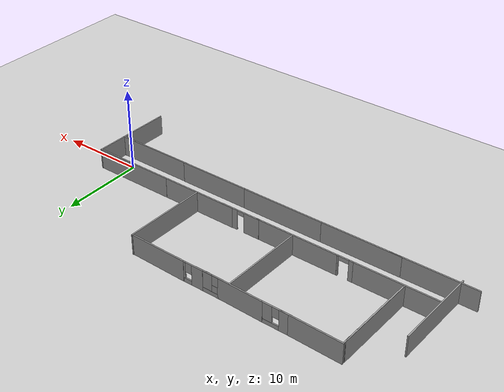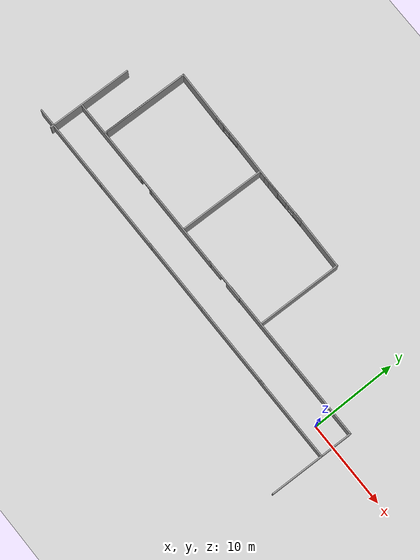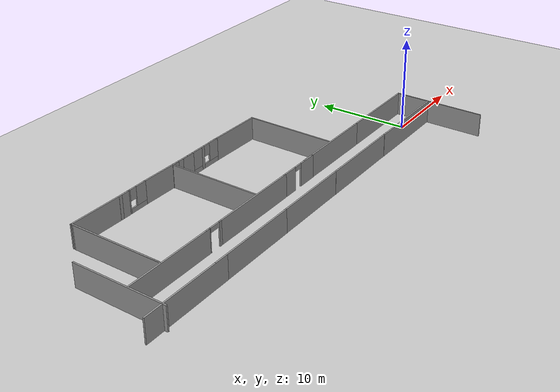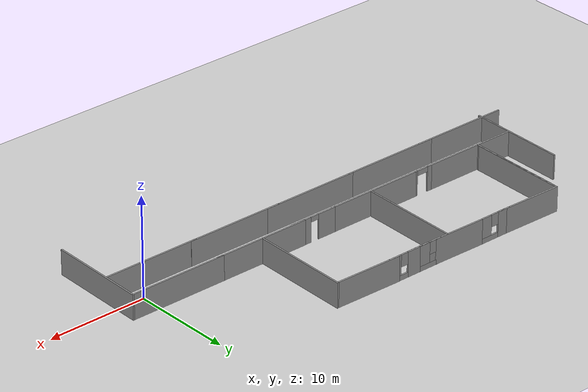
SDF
<sdf version="1.6">
 <world name="default">
  <model name="ground_plane">
   <static>1</static>
   <link name="link">
    <collision name="collision">
     <geometry><plane><normal>0 0 1</normal><size>100 100</size></plane></geometry>
     <surface>
      <contact><collide_bitmask>65535</collide_bitmask></contact>
      <friction><ode><mu>100</mu><mu2>50</mu2></ode></friction>
     </surface>
    </collision>
    <visual name="visual">
     <cast_shadows>0</cast_shadows>
     <geometry><plane><normal>0 0 1</normal><size>100 100</size></plane></geometry>
     <material>
      <script><uri>file://media/materials/scripts/gazebo.material</uri><name>Gazebo/Grey</name></script>
     </material>
    </visual>
   </link>
  </model>
  <model name="wall10">
   <pose>-2.12112 2.0663 0 0 -0 0</pose>
   <link name="Wall_1">
    <collision name="Wall_1_Collision">
     <geometry><box><size>10 0.15 2.5</size></box></geometry>
     <pose>0 0 1.25 0 -0 0</pose>
    </collision>
    <visual name="Wall_1_Visual">
     <pose>0 0 1.25 0 -0 0</pose>
     <geometry><box><size>10 0.15 2.5</size></box></geometry>
     <material>
      <script><uri>file://media/materials/scripts/gazebo.material</uri><name>Gazebo/Grey</name></script>
      <ambient>1 1 1 1</ambient>
     </material>
     <meta><layer>0</layer></meta>
    </visual>
   </link>
   <static>1</static>
  </model>
  <model name="wall10_0">
   <pose>-11.3867 2.05893 0 0 -0 0</pose>
   <link name="Wall_1">
    <collision name="Wall_1_Collision">
     <geometry><box><size>10 0.15 2.5</size></box></geometry>
     <pose>0 0 1.25 0 -0 0</pose>
    </collision>
    <visual name="Wall_1_Visual">
     <pose>0 0 1.25 0 -0 0</pose>
     <geometry><box><size>10 0.15 2.5</size></box></geometry>
     <material>
      <script><uri>file://media/materials/scripts/gazebo.material</uri><name>Gazebo/Grey</name></script>
      <ambient>1 1 1 1</ambient>
     </material>
     <meta><layer>0</layer></meta>
    </visual>
   </link>
   <static>1</static>
  </model>
  <model name="door5">
   <pose>-17.3676 2.02937 0 0 -0 0</pose>
   <link name="Wall_0">
    <visual name="Wall_0_Visual_0">
     <pose>-1.5275 0 1.25 0 -0 0</pose>
     <geometry><box><size>1.945 0.15 2.5</size></box></geometry>
     <material>
      <script><uri>file://media/materials/scripts/gazebo.material</uri><name>Gazebo/Grey</name></script>
      <ambient>1 1 1 1</ambient>
     </material>
     <meta><layer>0</layer></meta>
    </visual>
    <collision name="Wall_0_Collision_0">
     <geometry><box><size>1.945 0.15 2.5</size></box></geometry>
     <pose>-1.5275 0 1.25 0 -0 0</pose>
    </collision>
    <visual name="Wall_0_Visual_1">
     <pose>1.4225 0 1.25 0 -0 0</pose>
     <geometry><box><size>2.155 0.15 2.5</size></box></geometry>
     <material>
      <script><uri>file://media/materials/scripts/gazebo.material</uri><name>Gazebo/Grey</name></script>
      <ambient>1 1 1 1</ambient>
     </material>
     <meta><layer>0</layer></meta>
    </visual>
    <collision name="Wall_0_Collision_1">
     <geometry><box><size>2.155 0.15 2.5</size></box></geometry>
     <pose>1.4225 0 1.25 0 -0 0</pose>
    </collision>
    <visual name="Wall_0_Visual_2">
     <pose>-0.105 0 2.25 0 -0 0</pose>
     <geometry><box><size>0.9 0.15 0.5</size></box></geometry>
     <material>
      <script><uri>file://media/materials/scripts/gazebo.material</uri><name>Gazebo/Grey</name></script>
      <ambient>1 1 1 1</ambient>
     </material>
     <meta><layer>0</layer></meta>
    </visual>
    <collision name="Wall_0_Collision_2">
     <geometry><box><size>0.9 0.15 0.5</size></box></geometry>
     <pose>-0.105 0 2.25 0 -0 0</pose>
    </collision>
   </link>
   <static>1</static>
  </model>
  <model name="wall10_1">
   <pose>-11.4195 7.02789 0 0 -0 1.55</pose>
   <link name="Wall_1">
    <collision name="Wall_1_Collision">
     <geometry><box><size>10 0.15 2.5</size></box></geometry>
     <pose>0 0 1.25 0 -0 0</pose>
    </collision>
    <visual name="Wall_1_Visual">
     <pose>0 0 1.25 0 -0 0</pose>
     <geometry><box><size>10 0.15 2.5</size></box></geometry>
     <material>
      <script><uri>file://media/materials/scripts/gazebo.material</uri><name>Gazebo/Grey</name></script>
      <ambient>1 1 1 1</ambient>
     </material>
     <meta><layer>0</layer></meta>
    </visual>
   </link>
   <static>1</static>
  </model>
  <model name="wall10_1_clone">
   <pose>-24.038 7.07601 0 0 -0 1.55</pose>
   <link name="Wall_1">
    <collision name="Wall_1_Collision">
     <geometry><box><size>10 0.15 2.5</size></box></geometry>
     <pose>0 0 1.25 0 -0 0</pose>
    </collision>
    <visual name="Wall_1_Visual">
     <pose>0 0 1.25 0 -0 0</pose>
     <geometry><box><size>10 0.15 2.5</size></box></geometry>
     <material>
      <script><uri>file://media/materials/scripts/gazebo.material</uri><name>Gazebo/Grey</name></script>
      <ambient>1 1 1 1</ambient>
     </material>
     <meta><layer>0</layer></meta>
    </visual>
   </link>
   <static>1</static>
  </model>
  <model name="wall10_0_clone">
   <pose>-24.5279 2.01783 0 0 -0 0</pose>
   <link name="Wall_1">
    <collision name="Wall_1_Collision">
     <geometry><box><size>10 0.15 2.5</size></box></geometry>
     <pose>0 0 1.25 0 -0 0</pose>
    </collision>
    <visual name="Wall_1_Visual">
     <pose>0 0 1.25 0 -0 0</pose>
     <geometry><box><size>10 0.15 2.5</size></box></geometry>
     <material>
      <script><uri>file://media/materials/scripts/gazebo.material</uri><name>Gazebo/Grey</name></script>
      <ambient>1 1 1 1</ambient>
     </material>
     <meta><layer>0</layer></meta>
    </visual>
   </link>
   <static>1</static>
  </model>
  <model name="window">
   <pose>-18.9241 12.0327 0 0 -0 0</pose>
   <link name="Wall_2">
    <visual name="Wall_2_Visual_0">
     <pose>-1.04762 0 1.25 0 -0 0</pose>
     <geometry><box><size>1.40477 0.15 2.5</size></box></geometry>
     <material>
      <script><uri>file://media/materials/scripts/gazebo.material</uri><name>Gazebo/Grey</name></script>
      <ambient>1 1 1 1</ambient>
     </material>
     <meta><layer>0</layer></meta>
    </visual>
    <collision name="Wall_2_Collision_0">
     <geometry><box><size>1.40477 0.15 2.5</size></box></geometry>
     <pose>-1.04762 0 1.25 0 -0 0</pose>
    </collision>
    <visual name="Wall_2_Visual_1">
     <pose>0.702384 0 0.25 0 -0 0</pose>
     <geometry><box><size>2.09523 0.15 0.5</size></box></geometry>
     <material>
      <script><uri>file://media/materials/scripts/gazebo.material</uri><name>Gazebo/Grey</name></script>
      <ambient>1 1 1 1</ambient>
     </material>
     <meta><layer>0</layer></meta>
    </visual>
    <collision name="Wall_2_Collision_1">
     <geometry><box><size>2.09523 0.15 0.5</size></box></geometry>
     <pose>0.702384 0 0.25 0 -0 0</pose>
    </collision>
    <visual name="Wall_2_Visual_2">
     <pose>1.10238 0 1.5 0 -0 0</pose>
     <geometry><box><size>1.29523 0.15 2</size></box></geometry>
     <material>
      <script><uri>file://media/materials/scripts/gazebo.material</uri><name>Gazebo/Grey</name></script>
      <ambient>1 1 1 1</ambient>
     </material>
     <meta><layer>0</layer></meta>
    </visual>
    <collision name="Wall_2_Collision_2">
     <geometry><box><size>1.29523 0.15 2</size></box></geometry>
     <pose>1.10238 0 1.5 0 -0 0</pose>
    </collision>
    <visual name="Wall_2_Visual_3">
     <pose>0.054767 0 1.9 0 -0 0</pose>
     <geometry><box><size>0.8 0.15 1.2</size></box></geometry>
     <material>
      <script><uri>file://media/materials/scripts/gazebo.material</uri><name>Gazebo/Grey</name></script>
      <ambient>1 1 1 1</ambient>
     </material>
     <meta><layer>0</layer></meta>
    </visual>
    <collision name="Wall_2_Collision_3">
     <geometry><box><size>0.8 0.15 1.2</size></box></geometry>
     <pose>0.054767 0 1.9 0 -0 0</pose>
    </collision>
   </link>
   <static>1</static>
  </model>
  <model name="wallyese">
   <pose>-14.7575 11.9875 0 0 -0 1.55</pose>
   <link name="Wall_2">
    <collision name="Wall_2_Collision">
     <geometry><box><size>7 0.15 2.5</size></box></geometry>
     <pose>0 0 1.25 0 -0 0</pose>
    </collision>
    <visual name="Wall_2_Visual">
     <pose>0 0 1.25 0 -0 0</pose>
     <geometry><box><size>7 0.15 2.5</size></box></geometry>
     <material>
      <script><uri>file://media/materials/scripts/gazebo.material</uri><name>Gazebo/Grey</name></script>
      <ambient>1 1 1 1</ambient>
     </material>
     <meta><layer>0</layer></meta>
    </visual>
    <pose>0 0 0 0 -0 -1.5708</pose>
   </link>
   <static>1</static>
  </model>
  <model name="window_clone">
   <pose>-21.4097 12.0195 0 0 -0 0</pose>
   <link name="Wall_2">
    <visual name="Wall_2_Visual_0">
     <pose>-1.04762 0 1.25 0 -0 0</pose>
     <geometry><box><size>1.40477 0.15 2.5</size></box></geometry>
     <material>
      <script><uri>file://media/materials/scripts/gazebo.material</uri><name>Gazebo/Grey</name></script>
      <ambient>1 1 1 1</ambient>
     </material>
     <meta><layer>0</layer></meta>
    </visual>
    <collision name="Wall_2_Collision_0">
     <geometry><box><size>1.40477 0.15 2.5</size></box></geometry>
     <pose>-1.04762 0 1.25 0 -0 0</pose>
    </collision>
    <visual name="Wall_2_Visual_1">
     <pose>0.702384 0 0.25 0 -0 0</pose>
     <geometry><box><size>2.09523 0.15 0.5</size></box></geometry>
     <material>
      <script><uri>file://media/materials/scripts/gazebo.material</uri><name>Gazebo/Grey</name></script>
      <ambient>1 1 1 1</ambient>
     </material>
     <meta><layer>0</layer></meta>
    </visual>
    <collision name="Wall_2_Collision_1">
     <geometry><box><size>2.09523 0.15 0.5</size></box></geometry>
     <pose>0.702384 0 0.25 0 -0 0</pose>
    </collision>
    <visual name="Wall_2_Visual_2">
     <pose>1.10238 0 1.5 0 -0 0</pose>
     <geometry><box><size>1.29523 0.15 2</size></box></geometry>
     <material>
      <script><uri>file://media/materials/scripts/gazebo.material</uri><name>Gazebo/Grey</name></script>
      <ambient>1 1 1 1</ambient>
     </material>
     <meta><layer>0</layer></meta>
    </visual>
    <collision name="Wall_2_Collision_2">
     <geometry><box><size>1.29523 0.15 2</size></box></geometry>
     <pose>1.10238 0 1.5 0 -0 0</pose>
    </collision>
    <visual name="Wall_2_Visual_3">
     <pose>0.054767 0 1.9 0 -0 0</pose>
     <geometry><box><size>0.8 0.15 1.2</size></box></geometry>
     <material>
      <script><uri>file://media/materials/scripts/gazebo.material</uri><name>Gazebo/Grey</name></script>
      <ambient>1 1 1 1</ambient>
     </material>
     <meta><layer>0</layer></meta>
    </visual>
    <collision name="Wall_2_Collision_3">
     <geometry><box><size>0.8 0.15 1.2</size></box></geometry>
     <pose>0.054767 0 1.9 0 -0 0</pose>
    </collision>
   </link>
   <static>1</static>
  </model>
  <model name="window_clone_clone">
   <pose>-22.2738 12.0211 -0.01363 0 -0 0</pose>
   <link name="Wall_2">
    <visual name="Wall_2_Visual_0">
     <pose>-1.04762 0 1.25 0 -0 0</pose>
     <geometry><box><size>1.40477 0.15 2.5</size></box></geometry>
     <material>
      <script><uri>file://media/materials/scripts/gazebo.material</uri><name>Gazebo/Grey</name></script>
      <ambient>1 1 1 1</ambient>
     </material>
     <meta><layer>0</layer></meta>
    </visual>
    <collision name="Wall_2_Collision_0">
     <geometry><box><size>1.40477 0.15 2.5</size></box></geometry>
     <pose>-1.04762 0 1.25 0 -0 0</pose>
    </collision>
    <visual name="Wall_2_Visual_1">
     <pose>0.702384 0 0.25 0 -0 0</pose>
     <geometry><box><size>2.09523 0.15 0.5</size></box></geometry>
     <material>
      <script><uri>file://media/materials/scripts/gazebo.material</uri><name>Gazebo/Grey</name></script>
      <ambient>1 1 1 1</ambient>
     </material>
     <meta><layer>0</layer></meta>
    </visual>
    <collision name="Wall_2_Collision_1">
     <geometry><box><size>2.09523 0.15 0.5</size></box></geometry>
     <pose>0.702384 0 0.25 0 -0 0</pose>
    </collision>
    <visual name="Wall_2_Visual_2">
     <pose>1.10238 0 1.5 0 -0 0</pose>
     <geometry><box><size>1.29523 0.15 2</size></box></geometry>
     <material>
      <script><uri>file://media/materials/scripts/gazebo.material</uri><name>Gazebo/Grey</name></script>
      <ambient>1 1 1 1</ambient>
     </material>
     <meta><layer>0</layer></meta>
    </visual>
    <collision name="Wall_2_Collision_2">
     <geometry><box><size>1.29523 0.15 2</size></box></geometry>
     <pose>1.10238 0 1.5 0 -0 0</pose>
    </collision>
    <visual name="Wall_2_Visual_3">
     <pose>0.054767 0 1.9 0 -0 0</pose>
     <geometry><box><size>0.8 0.15 1.2</size></box></geometry>
     <material>
      <script><uri>file://media/materials/scripts/gazebo.material</uri><name>Gazebo/Grey</name></script>
      <ambient>1 1 1 1</ambient>
     </material>
     <meta><layer>0</layer></meta>
    </visual>
    <collision name="Wall_2_Collision_3">
     <geometry><box><size>0.8 0.15 1.2</size></box></geometry>
     <pose>0.054767 0 1.9 0 -0 0</pose>
    </collision>
   </link>
   <static>1</static>
  </model>
  <model name="1.2door">
   <pose>-30.4069 2.00899 0 0 -0 0</pose>
   <link name="Wall_15">
    <visual name="Wall_15_Visual_0">
     <pose>-0.747625 0 1.25 0 -0 0</pose>
     <geometry><box><size>0.50475 0.15 2.5</size></box></geometry>
     <material>
      <script><uri>file://media/materials/scripts/gazebo.material</uri><name>Gazebo/Grey</name></script>
      <ambient>1 1 1 1</ambient>
     </material>
     <meta><layer>0</layer></meta>
    </visual>
    <collision name="Wall_15_Collision_0">
     <geometry><box><size>0.50475 0.15 2.5</size></box></geometry>
     <pose>-0.747625 0 1.25 0 -0 0</pose>
    </collision>
    <visual name="Wall_15_Visual_1">
     <pose>0.857625 0 1.25 0 -0 0</pose>
     <geometry><box><size>0.28475 0.15 2.5</size></box></geometry>
     <material>
      <script><uri>file://media/materials/scripts/gazebo.material</uri><name>Gazebo/Grey</name></script>
      <ambient>1 1 1 1</ambient>
     </material>
     <meta><layer>0</layer></meta>
    </visual>
    <collision name="Wall_15_Collision_1">
     <geometry><box><size>0.28475 0.15 2.5</size></box></geometry>
     <pose>0.857625 0 1.25 0 -0 0</pose>
    </collision>
    <visual name="Wall_15_Visual_2">
     <pose>0.11 0 2.25 0 -0 0</pose>
     <geometry><box><size>1.2105 0.15 0.5</size></box></geometry>
     <material>
      <script><uri>file://media/materials/scripts/gazebo.material</uri><name>Gazebo/Grey</name></script>
      <ambient>1 1 1 1</ambient>
     </material>
     <meta><layer>0</layer></meta>
    </visual>
    <collision name="Wall_15_Collision_2">
     <geometry><box><size>1.2105 0.15 0.5</size></box></geometry>
     <pose>0.11 0 2.25 0 -0 0</pose>
    </collision>
   </link>
   <static>1</static>
  </model>
  <model name="wall10_1_clone_clone">
   <pose>-37.0235 7.2489 0 0 -0 1.55</pose>
   <link name="Wall_1">
    <collision name="Wall_1_Collision">
     <geometry><box><size>10 0.15 2.5</size></box></geometry>
     <pose>0 0 1.25 0 -0 0</pose>
    </collision>
    <visual name="Wall_1_Visual">
     <pose>0 0 1.25 0 -0 0</pose>
     <geometry><box><size>10 0.15 2.5</size></box></geometry>
     <material>
      <script><uri>file://media/materials/scripts/gazebo.material</uri><name>Gazebo/Grey</name></script>
      <ambient>1 1 1 1</ambient>
     </material>
     <meta><layer>0</layer></meta>
    </visual>
   </link>
   <static>1</static>
  </model>
  <model name="wall10_0_clone_clone">
   <pose>-36.0112 2.00716 0 0 -0 0</pose>
   <link name="Wall_1">
    <collision name="Wall_1_Collision">
     <geometry><box><size>10 0.15 2.5</size></box></geometry>
     <pose>0 0 1.25 0 -0 0</pose>
    </collision>
    <visual name="Wall_1_Visual">
     <pose>0 0 1.25 0 -0 0</pose>
     <geometry><box><size>10 0.15 2.5</size></box></geometry>
     <material>
      <script><uri>file://media/materials/scripts/gazebo.material</uri><name>Gazebo/Grey</name></script>
      <ambient>1 1 1 1</ambient>
     </material>
     <meta><layer>0</layer></meta>
    </visual>
   </link>
   <static>1</static>
  </model>
  <model name="window_clone_0">
   <pose>-29.5317 12.125 0 0 -0 0</pose>
   <link name="Wall_2">
    <visual name="Wall_2_Visual_0">
     <pose>-1.04762 0 1.25 0 -0 0</pose>
     <geometry><box><size>1.40477 0.15 2.5</size></box></geometry>
     <material>
      <script><uri>file://media/materials/scripts/gazebo.material</uri><name>Gazebo/Grey</name></script>
      <ambient>1 1 1 1</ambient>
     </material>
     <meta><layer>0</layer></meta>
    </visual>
    <collision name="Wall_2_Collision_0">
     <geometry><box><size>1.40477 0.15 2.5</size></box></geometry>
     <pose>-1.04762 0 1.25 0 -0 0</pose>
    </collision>
    <visual name="Wall_2_Visual_1">
     <pose>0.702384 0 0.25 0 -0 0</pose>
     <geometry><box><size>2.09523 0.15 0.5</size></box></geometry>
     <material>
      <script><uri>file://media/materials/scripts/gazebo.material</uri><name>Gazebo/Grey</name></script>
      <ambient>1 1 1 1</ambient>
     </material>
     <meta><layer>0</layer></meta>
    </visual>
    <collision name="Wall_2_Collision_1">
     <geometry><box><size>2.09523 0.15 0.5</size></box></geometry>
     <pose>0.702384 0 0.25 0 -0 0</pose>
    </collision>
    <visual name="Wall_2_Visual_2">
     <pose>1.10238 0 1.5 0 -0 0</pose>
     <geometry><box><size>1.29523 0.15 2</size></box></geometry>
     <material>
      <script><uri>file://media/materials/scripts/gazebo.material</uri><name>Gazebo/Grey</name></script>
      <ambient>1 1 1 1</ambient>
     </material>
     <meta><layer>0</layer></meta>
    </visual>
    <collision name="Wall_2_Collision_2">
     <geometry><box><size>1.29523 0.15 2</size></box></geometry>
     <pose>1.10238 0 1.5 0 -0 0</pose>
    </collision>
    <visual name="Wall_2_Visual_3">
     <pose>0.054767 0 1.9 0 -0 0</pose>
     <geometry><box><size>0.8 0.15 1.2</size></box></geometry>
     <material>
      <script><uri>file://media/materials/scripts/gazebo.material</uri><name>Gazebo/Grey</name></script>
      <ambient>1 1 1 1</ambient>
     </material>
     <meta><layer>0</layer></meta>
    </visual>
    <collision name="Wall_2_Collision_3">
     <geometry><box><size>0.8 0.15 1.2</size></box></geometry>
     <pose>0.054767 0 1.9 0 -0 0</pose>
    </collision>
   </link>
   <static>1</static>
  </model>
  <model name="wallyese_clone">
   <pose>-33.53 12.1796 0 0 -0 1.55</pose>
   <link name="Wall_2">
    <collision name="Wall_2_Collision">
     <geometry><box><size>7 0.15 2.5</size></box></geometry>
     <pose>0 0 1.25 0 -0 0</pose>
    </collision>
    <visual name="Wall_2_Visual">
     <pose>0 0 1.25 0 -0 0</pose>
     <geometry><box><size>7 0.15 2.5</size></box></geometry>
     <material>
      <script><uri>file://media/materials/scripts/gazebo.material</uri><name>Gazebo/Grey</name></script>
      <ambient>1 1 1 1</ambient>
     </material>
     <meta><layer>0</layer></meta>
    </visual>
    <pose>0 0 0 0 -0 -1.5708</pose>
   </link>
   <static>1</static>
  </model>
  <model name="wallyese_clone_clone">
   <pose>-24.4681 12.0607 0 0 -0 1.55</pose>
   <link name="Wall_2">
    <collision name="Wall_2_Collision">
     <geometry><box><size>7 0.15 2.5</size></box></geometry>
     <pose>0 0 1.25 0 -0 0</pose>
    </collision>
    <visual name="Wall_2_Visual">
     <pose>0 0 1.25 0 -0 0</pose>
     <geometry><box><size>7 0.15 2.5</size></box></geometry>
     <material>
      <script><uri>file://media/materials/scripts/gazebo.material</uri><name>Gazebo/Grey</name></script>
      <ambient>1 1 1 1</ambient>
     </material>
     <meta><layer>0</layer></meta>
    </visual>
    <pose>0 0 0 0 -0 -1.5708</pose>
   </link>
   <static>1</static>
  </model>
  <model name="wall10_1_clone_clone_clone">
   <pose>-37.0571 7.0094 0 0 -0 1.55</pose>
   <link name="Wall_1">
    <collision name="Wall_1_Collision">
     <geometry><box><size>10 0.15 2.5</size></box></geometry>
     <pose>0 0 1.25 0 -0 0</pose>
    </collision>
    <visual name="Wall_1_Visual">
     <pose>0 0 1.25 0 -0 0</pose>
     <geometry><box><size>10 0.15 2.5</size></box></geometry>
     <material>
      <script><uri>file://media/materials/scripts/gazebo.material</uri><name>Gazebo/Grey</name></script>
      <ambient>1 1 1 1</ambient>
     </material>
     <meta><layer>0</layer></meta>
    </visual>
   </link>
   <static>1</static>
  </model>
  <model name="wall10_3">
   <pose>-2.17325 -1.61963 0 0 -0 0</pose>
   <link name="Wall_1">
    <collision name="Wall_1_Collision">
     <geometry><box><size>10 0.15 2.5</size></box></geometry>
     <pose>0 0 1.25 0 -0 0</pose>
    </collision>
    <visual name="Wall_1_Visual">
     <pose>0 0 1.25 0 -0 0</pose>
     <geometry><box><size>10 0.15 2.5</size></box></geometry>
     <material>
      <script><uri>file://media/materials/scripts/gazebo.material</uri><name>Gazebo/Grey</name></script>
      <ambient>1 1 1 1</ambient>
     </material>
     <meta><layer>0</layer></meta>
    </visual>
   </link>
   <static>1</static>
  </model>
  <model name="wall10_3_clone">
   <pose>-11.528 -1.60047 0 0 -0 0</pose>
   <link name="Wall_1">
    <collision name="Wall_1_Collision">
     <geometry><box><size>10 0.15 2.5</size></box></geometry>
     <pose>0 0 1.25 0 -0 0</pose>
    </collision>
    <visual name="Wall_1_Visual">
     <pose>0 0 1.25 0 -0 0</pose>
     <geometry><box><size>10 0.15 2.5</size></box></geometry>
     <material>
      <script><uri>file://media/materials/scripts/gazebo.material</uri><name>Gazebo/Grey</name></script>
      <ambient>1 1 1 1</ambient>
     </material>
     <meta><layer>0</layer></meta>
    </visual>
   </link>
   <static>1</static>
  </model>
  <model name="wall10_3_clone_0">
   <pose>-20.1918 -1.58624 0 0 -0 0</pose>
   <link name="Wall_1">
    <collision name="Wall_1_Collision">
     <geometry><box><size>10 0.15 2.5</size></box></geometry>
     <pose>0 0 1.25 0 -0 0</pose>
    </collision>
    <visual name="Wall_1_Visual">
     <pose>0 0 1.25 0 -0 0</pose>
     <geometry><box><size>10 0.15 2.5</size></box></geometry>
     <material>
      <script><uri>file://media/materials/scripts/gazebo.material</uri><name>Gazebo/Grey</name></script>
      <ambient>1 1 1 1</ambient>
     </material>
     <meta><layer>0</layer></meta>
    </visual>
   </link>
   <static>1</static>
  </model>
  <model name="wall10_3_clone_1">
   <pose>-29.7558 -1.59204 0 0 -0 0</pose>
   <link name="Wall_1">
    <collision name="Wall_1_Collision">
     <geometry><box><size>10 0.15 2.5</size></box></geometry>
     <pose>0 0 1.25 0 -0 0</pose>
    </collision>
    <visual name="Wall_1_Visual">
     <pose>0 0 1.25 0 -0 0</pose>
     <geometry><box><size>10 0.15 2.5</size></box></geometry>
     <material>
      <script><uri>file://media/materials/scripts/gazebo.material</uri><name>Gazebo/Grey</name></script>
      <ambient>1 1 1 1</ambient>
     </material>
     <meta><layer>0</layer></meta>
    </visual>
   </link>
   <static>1</static>
  </model>
  <model name="wall10_3_clone_2">
   <pose>-38.253 -1.5975 0 0 -0 0</pose>
   <link name="Wall_1">
    <collision name="Wall_1_Collision">
     <geometry><box><size>10 0.15 2.5</size></box></geometry>
     <pose>0 0 1.25 0 -0 0</pose>
    </collision>
    <visual name="Wall_1_Visual">
     <pose>0 0 1.25 0 -0 0</pose>
     <geometry><box><size>10 0.15 2.5</size></box></geometry>
     <material>
      <script><uri>file://media/materials/scripts/gazebo.material</uri><name>Gazebo/Grey</name></script>
      <ambient>1 1 1 1</ambient>
     </material>
     <meta><layer>0</layer></meta>
    </visual>
   </link>
   <static>1</static>
  </model>
  <model name="wall10_1_clone_0">
   <pose>2.7305 -2.84934 0 0 -0 1.55</pose>
   <link name="Wall_1">
    <collision name="Wall_1_Collision">
     <geometry><box><size>10 0.15 2.5</size></box></geometry>
     <pose>0 0 1.25 0 -0 0</pose>
    </collision>
    <visual name="Wall_1_Visual">
     <pose>0 0 1.25 0 -0 0</pose>
     <geometry><box><size>10 0.15 2.5</size></box></geometry>
     <material>
      <script><uri>file://media/materials/scripts/gazebo.material</uri><name>Gazebo/Grey</name></script>
      <ambient>1 1 1 1</ambient>
     </material>
     <meta><layer>0</layer></meta>
    </visual>
   </link>
   <static>1</static>
  </model>
  <model name="wall10_1_clone_1">
   <pose>-41.0411 2.98881 0 0 -0 1.55</pose>
   <link name="Wall_1">
    <collision name="Wall_1_Collision">
     <geometry><box><size>10 0.15 2.5</size></box></geometry>
     <pose>0 0 1.25 0 -0 0</pose>
    </collision>
    <visual name="Wall_1_Visual">
     <pose>0 0 1.25 0 -0 0</pose>
     <geometry><box><size>10 0.15 2.5</size></box></geometry>
     <material>
      <script><uri>file://media/materials/scripts/gazebo.material</uri><name>Gazebo/Grey</name></script>
      <ambient>1 1 1 1</ambient>
     </material>
     <meta><layer>0</layer></meta>
    </visual>
   </link>
   <static>1</static>
  </model>
 </world>
</sdf>
